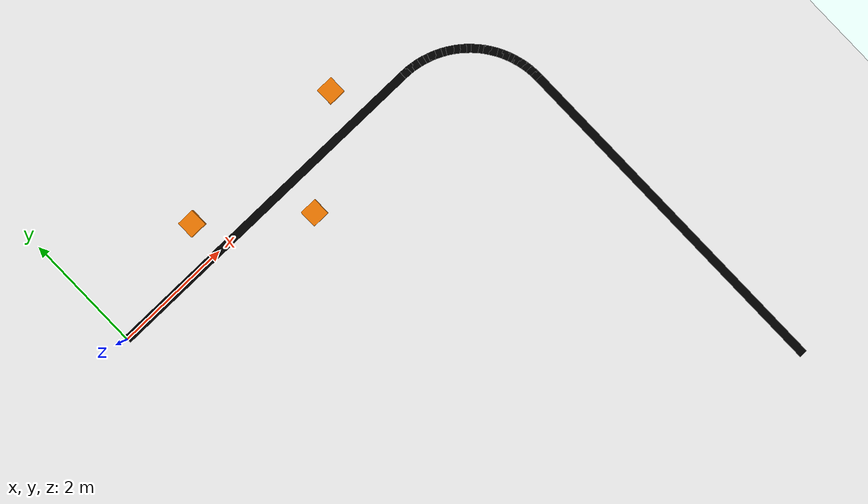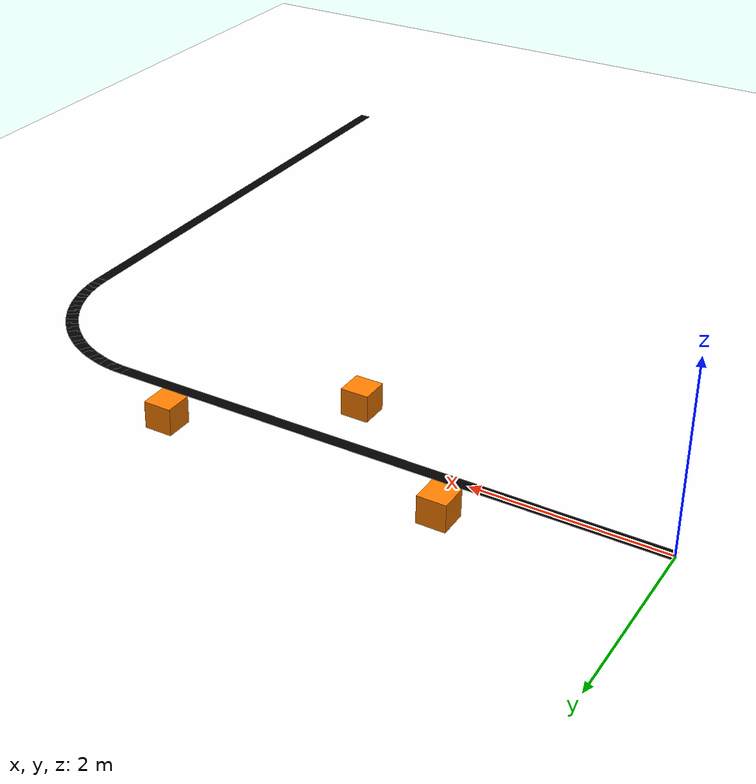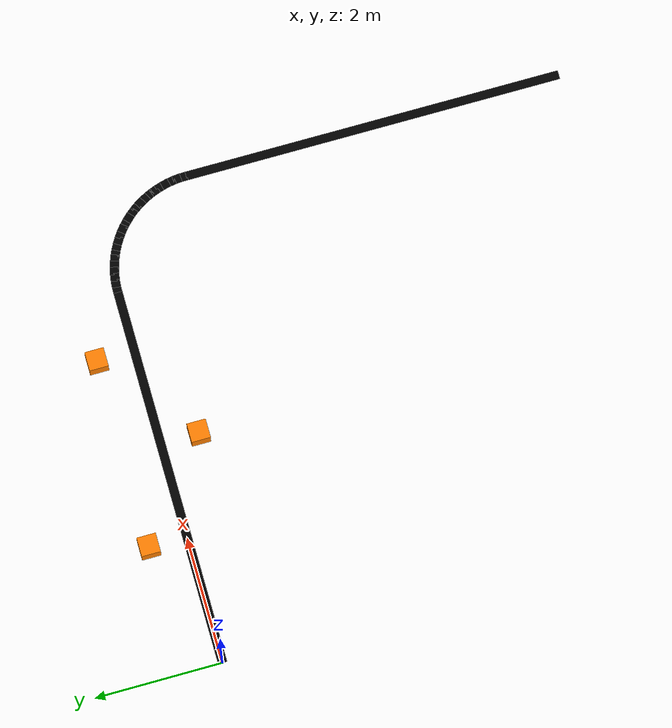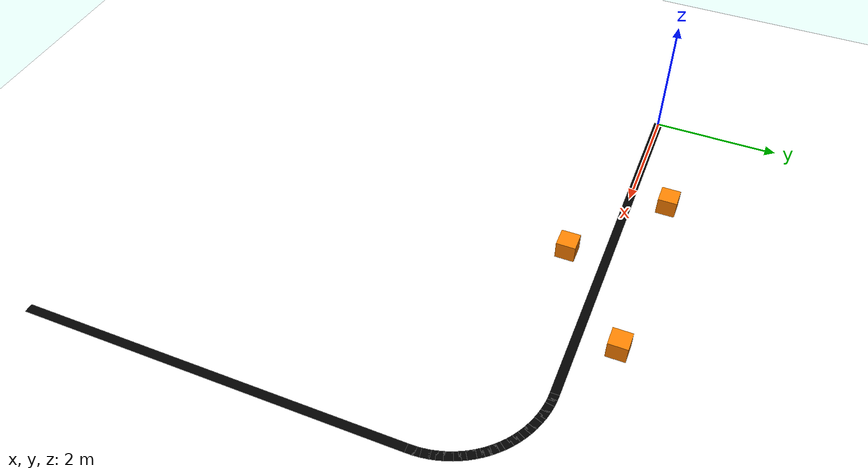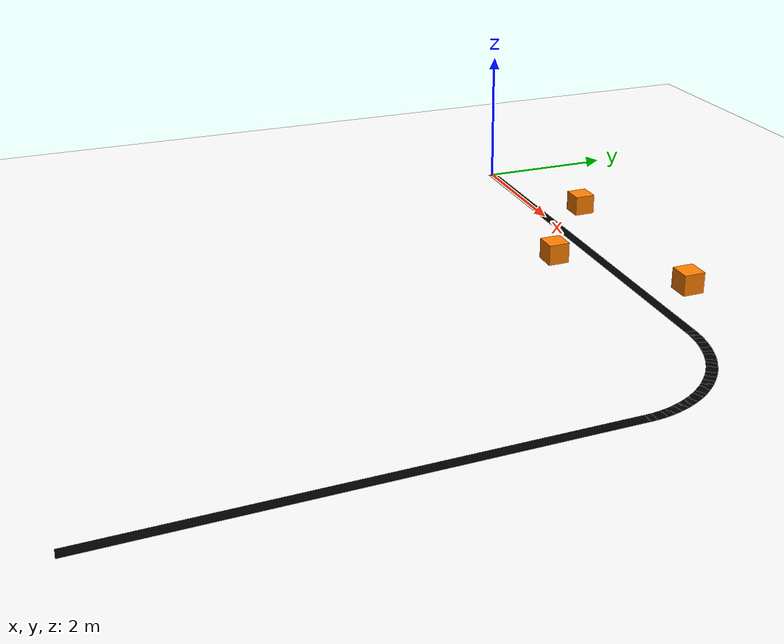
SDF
<?xml version="1.0"?>
<sdf version="1.6">
  <world name="line_world">
    <include><uri>model://ground_plane</uri></include>
    <include><uri>model://sun</uri></include>
    <model name="floor">
      <static>true</static>
      <pose>4 -3 0.005 0 0 0</pose>
      <link name="link">
        <visual name="v">
          <geometry><box><size>30 30 0.001</size></box></geometry>
          <material><ambient>1 1 1 1</ambient><diffuse>1 1 1 1</diffuse></material>
        </visual>
      </link>
    </model>
    <model name="line_straight">
      <static>true</static>
      <pose>3.000 0.000 0.006 0 0 0.0000</pose>
      <link name="link">
        <visual name="v">
          <geometry><box><size>6.000 0.14 0.001</size></box></geometry>
          <material><ambient>0 0 0 1</ambient><diffuse>0 0 0 1</diffuse></material>
        </visual>
      </link>
    </model>
    <model name="arc00">
      <static>true</static>
      <pose>6.049 -0.001 0.006 0 0 -0.0327</pose>
      <link name="link">
        <visual name="v">
          <geometry><box><size>0.128 0.14 0.001</size></box></geometry>
          <material><ambient>0 0 0 1</ambient><diffuse>0 0 0 1</diffuse></material>
        </visual>
      </link>
    </model>
    <model name="arc01">
      <static>true</static>
      <pose>6.147 -0.007 0.006 0 0 -0.0982</pose>
      <link name="link">
        <visual name="v">
          <geometry><box><size>0.128 0.14 0.001</size></box></geometry>
          <material><ambient>0 0 0 1</ambient><diffuse>0 0 0 1</diffuse></material>
        </visual>
      </link>
    </model>
    <model name="arc02">
      <static>true</static>
      <pose>6.244 -0.020 0.006 0 0 -0.1636</pose>
      <link name="link">
        <visual name="v">
          <geometry><box><size>0.128 0.14 0.001</size></box></geometry>
          <material><ambient>0 0 0 1</ambient><diffuse>0 0 0 1</diffuse></material>
        </visual>
      </link>
    </model>
    <model name="arc03">
      <static>true</static>
      <pose>6.341 -0.039 0.006 0 0 -0.2291</pose>
      <link name="link">
        <visual name="v">
          <geometry><box><size>0.128 0.14 0.001</size></box></geometry>
          <material><ambient>0 0 0 1</ambient><diffuse>0 0 0 1</diffuse></material>
        </visual>
      </link>
    </model>
    <model name="arc04">
      <static>true</static>
      <pose>6.435 -0.065 0.006 0 0 -0.2945</pose>
      <link name="link">
        <visual name="v">
          <geometry><box><size>0.128 0.14 0.001</size></box></geometry>
          <material><ambient>0 0 0 1</ambient><diffuse>0 0 0 1</diffuse></material>
        </visual>
      </link>
    </model>
    <model name="arc05">
      <static>true</static>
      <pose>6.528 -0.096 0.006 0 0 -0.3600</pose>
      <link name="link">
        <visual name="v">
          <geometry><box><size>0.128 0.14 0.001</size></box></geometry>
          <material><ambient>0 0 0 1</ambient><diffuse>0 0 0 1</diffuse></material>
        </visual>
      </link>
    </model>
    <model name="arc06">
      <static>true</static>
      <pose>6.619 -0.134 0.006 0 0 -0.4254</pose>
      <link name="link">
        <visual name="v">
          <geometry><box><size>0.128 0.14 0.001</size></box></geometry>
          <material><ambient>0 0 0 1</ambient><diffuse>0 0 0 1</diffuse></material>
        </visual>
      </link>
    </model>
    <model name="arc07">
      <static>true</static>
      <pose>6.707 -0.177 0.006 0 0 -0.4909</pose>
      <link name="link">
        <visual name="v">
          <geometry><box><size>0.128 0.14 0.001</size></box></geometry>
          <material><ambient>0 0 0 1</ambient><diffuse>0 0 0 1</diffuse></material>
        </visual>
      </link>
    </model>
    <model name="arc08">
      <static>true</static>
      <pose>6.792 -0.226 0.006 0 0 -0.5563</pose>
      <link name="link">
        <visual name="v">
          <geometry><box><size>0.128 0.14 0.001</size></box></geometry>
          <material><ambient>0 0 0 1</ambient><diffuse>0 0 0 1</diffuse></material>
        </visual>
      </link>
    </model>
    <model name="arc09">
      <static>true</static>
      <pose>6.874 -0.281 0.006 0 0 -0.6218</pose>
      <link name="link">
        <visual name="v">
          <geometry><box><size>0.128 0.14 0.001</size></box></geometry>
          <material><ambient>0 0 0 1</ambient><diffuse>0 0 0 1</diffuse></material>
        </visual>
      </link>
    </model>
    <model name="arc10">
      <static>true</static>
      <pose>6.952 -0.340 0.006 0 0 -0.6872</pose>
      <link name="link">
        <visual name="v">
          <geometry><box><size>0.128 0.14 0.001</size></box></geometry>
          <material><ambient>0 0 0 1</ambient><diffuse>0 0 0 1</diffuse></material>
        </visual>
      </link>
    </model>
    <model name="arc11">
      <static>true</static>
      <pose>7.025 -0.405 0.006 0 0 -0.7527</pose>
      <link name="link">
        <visual name="v">
          <geometry><box><size>0.128 0.14 0.001</size></box></geometry>
          <material><ambient>0 0 0 1</ambient><diffuse>0 0 0 1</diffuse></material>
        </visual>
      </link>
    </model>
    <model name="arc12">
      <static>true</static>
      <pose>7.095 -0.475 0.006 0 0 -0.8181</pose>
      <link name="link">
        <visual name="v">
          <geometry><box><size>0.128 0.14 0.001</size></box></geometry>
          <material><ambient>0 0 0 1</ambient><diffuse>0 0 0 1</diffuse></material>
        </visual>
      </link>
    </model>
    <model name="arc13">
      <static>true</static>
      <pose>7.160 -0.548 0.006 0 0 -0.8836</pose>
      <link name="link">
        <visual name="v">
          <geometry><box><size>0.128 0.14 0.001</size></box></geometry>
          <material><ambient>0 0 0 1</ambient><diffuse>0 0 0 1</diffuse></material>
        </visual>
      </link>
    </model>
    <model name="arc14">
      <static>true</static>
      <pose>7.219 -0.626 0.006 0 0 -0.9490</pose>
      <link name="link">
        <visual name="v">
          <geometry><box><size>0.128 0.14 0.001</size></box></geometry>
          <material><ambient>0 0 0 1</ambient><diffuse>0 0 0 1</diffuse></material>
        </visual>
      </link>
    </model>
    <model name="arc15">
      <static>true</static>
      <pose>7.274 -0.708 0.006 0 0 -1.0145</pose>
      <link name="link">
        <visual name="v">
          <geometry><box><size>0.128 0.14 0.001</size></box></geometry>
          <material><ambient>0 0 0 1</ambient><diffuse>0 0 0 1</diffuse></material>
        </visual>
      </link>
    </model>
    <model name="arc16">
      <static>true</static>
      <pose>7.323 -0.793 0.006 0 0 -1.0799</pose>
      <link name="link">
        <visual name="v">
          <geometry><box><size>0.128 0.14 0.001</size></box></geometry>
          <material><ambient>0 0 0 1</ambient><diffuse>0 0 0 1</diffuse></material>
        </visual>
      </link>
    </model>
    <model name="arc17">
      <static>true</static>
      <pose>7.366 -0.881 0.006 0 0 -1.1454</pose>
      <link name="link">
        <visual name="v">
          <geometry><box><size>0.128 0.14 0.001</size></box></geometry>
          <material><ambient>0 0 0 1</ambient><diffuse>0 0 0 1</diffuse></material>
        </visual>
      </link>
    </model>
    <model name="arc18">
      <static>true</static>
      <pose>7.404 -0.972 0.006 0 0 -1.2108</pose>
      <link name="link">
        <visual name="v">
          <geometry><box><size>0.128 0.14 0.001</size></box></geometry>
          <material><ambient>0 0 0 1</ambient><diffuse>0 0 0 1</diffuse></material>
        </visual>
      </link>
    </model>
    <model name="arc19">
      <static>true</static>
      <pose>7.435 -1.065 0.006 0 0 -1.2763</pose>
      <link name="link">
        <visual name="v">
          <geometry><box><size>0.128 0.14 0.001</size></box></geometry>
          <material><ambient>0 0 0 1</ambient><diffuse>0 0 0 1</diffuse></material>
        </visual>
      </link>
    </model>
    <model name="arc20">
      <static>true</static>
      <pose>7.461 -1.159 0.006 0 0 -1.3417</pose>
      <link name="link">
        <visual name="v">
          <geometry><box><size>0.128 0.14 0.001</size></box></geometry>
          <material><ambient>0 0 0 1</ambient><diffuse>0 0 0 1</diffuse></material>
        </visual>
      </link>
    </model>
    <model name="arc21">
      <static>true</static>
      <pose>7.480 -1.256 0.006 0 0 -1.4072</pose>
      <link name="link">
        <visual name="v">
          <geometry><box><size>0.128 0.14 0.001</size></box></geometry>
          <material><ambient>0 0 0 1</ambient><diffuse>0 0 0 1</diffuse></material>
        </visual>
      </link>
    </model>
    <model name="arc22">
      <static>true</static>
      <pose>7.493 -1.353 0.006 0 0 -1.4726</pose>
      <link name="link">
        <visual name="v">
          <geometry><box><size>0.128 0.14 0.001</size></box></geometry>
          <material><ambient>0 0 0 1</ambient><diffuse>0 0 0 1</diffuse></material>
        </visual>
      </link>
    </model>
    <model name="arc23">
      <static>true</static>
      <pose>7.499 -1.451 0.006 0 0 -1.5381</pose>
      <link name="link">
        <visual name="v">
          <geometry><box><size>0.128 0.14 0.001</size></box></geometry>
          <material><ambient>0 0 0 1</ambient><diffuse>0 0 0 1</diffuse></material>
        </visual>
      </link>
    </model>
    <model name="line_straight2">
      <static>true</static>
      <pose>7.500 -4.500 0.006 0 0 -1.5708</pose>
      <link name="link">
        <visual name="v">
          <geometry><box><size>6.000 0.14 0.001</size></box></geometry>
          <material><ambient>0 0 0 1</ambient><diffuse>0 0 0 1</diffuse></material>
        </visual>
      </link>
    </model>
    <!-- Obstacles for obstacle_avoid.py: placed 60 cm off the line so the
         line follower's camera ROI never sees them, while the lidar does. -->
    <model name="obstacle1">
      <static>true</static>
      <pose>2.0 0.6 0.15 0 0 0</pose>
      <link name="link">
        <collision name="c">
          <geometry><box><size>0.3 0.3 0.3</size></box></geometry>
        </collision>
        <visual name="v">
          <geometry><box><size>0.3 0.3 0.3</size></box></geometry>
          <material><ambient>1 0.5 0 1</ambient><diffuse>1 0.5 0 1</diffuse></material>
        </visual>
      </link>
    </model>
    <model name="obstacle2">
      <static>true</static>
      <pose>3.5 -0.6 0.15 0 0 0</pose>
      <link name="link">
        <collision name="c">
          <geometry><box><size>0.3 0.3 0.3</size></box></geometry>
        </collision>
        <visual name="v">
          <geometry><box><size>0.3 0.3 0.3</size></box></geometry>
          <material><ambient>1 0.5 0 1</ambient><diffuse>1 0.5 0 1</diffuse></material>
        </visual>
      </link>
    </model>
    <model name="obstacle3">
      <static>true</static>
      <pose>5.0 0.6 0.15 0 0 0</pose>
      <link name="link">
        <collision name="c">
          <geometry><box><size>0.3 0.3 0.3</size></box></geometry>
        </collision>
        <visual name="v">
          <geometry><box><size>0.3 0.3 0.3</size></box></geometry>
          <material><ambient>1 0.5 0 1</ambient><diffuse>1 0.5 0 1</diffuse></material>
        </visual>
      </link>
    </model>
  </world>
</sdf>
